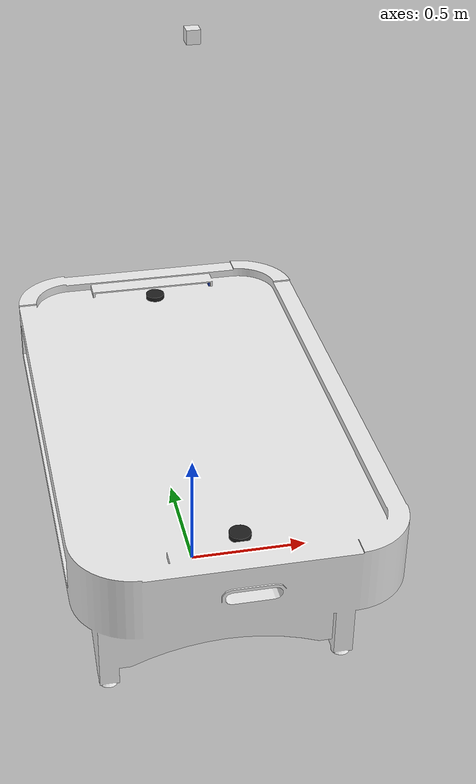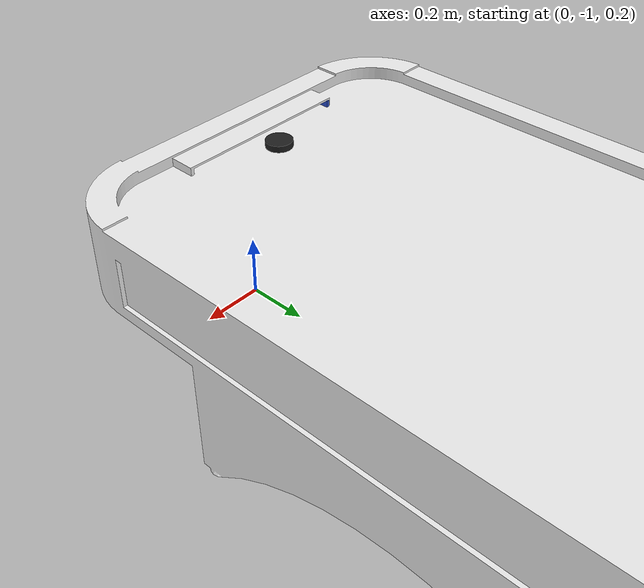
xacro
<?xml version="1.0"?>
<robot xmlns:xacro="http://www.ros.org/wiki/xacro" name="hockey_robot">

  <xacro:property name="PI" value="3.1415926535897931"/>
  <xacro:property name="mass" value="1" /> <!-- arbitrary value for mass -->
  <xacro:property name="width" value="1.1" /> <!-- Square dimensions (widthxwidth) of beams -->
  <xacro:property name="tackers_radius" value="0.86" /> <!-- Link 1 -->
  <xacro:property name="tackers_height" value="0.1" />
  <xacro:property name="camera_height" value="1.5" /> <!-- Link 3 -->
  <xacro:property name="camera_link" value="0.05" /> <!-- Size of square 'camera' box -->
  <xacro:property name="sonar_length" value="0.07" />
  <xacro:property name="sonar_width" value="0.01" />
  <xacro:property name="sonar_height" value="0.02" />
  <xacro:property name="sonar_link" value="0.1" />
  <xacro:property name="pusher_height" value="0.02" /> <!-- Space btw top of beam and the each joint -->
  <xacro:property name="pusher_radius" value="0.04" />

  <!-- Import all Gazebo-customization elements, including Gazebo colors -->
  <xacro:include filename="$(find hockey_robot_description)/urdf/hockey_robot.gazebo" />
  <!-- Import Rviz colors -->
  <xacro:include filename="$(find hockey_robot_description)/urdf/materials.xacro" />

  <link name="world"/>

  <joint name="fixed" type="fixed">
    <parent link="world"/>
    <child link="base_link"/>
    <origin xyz="0 0 0.8" rpy="0 0 0"/>
  </joint>

  <link name="base_link">
    <visual>
      <geometry>
        <mesh filename="package://hockey_robot_description/meshes/hockeytablev4.dae"/>
      </geometry>
      <origin rpy="0 0 0" xyz="-0.46 -0.7 -0.8"/>
      <material name="white"/>
    </visual>
    <collision>
      <geometry>
        <mesh filename="package://hockey_robot_description/meshes/hockeytablev4.dae"/>
      </geometry>
      <origin rpy="0 0 0" xyz="-0.46 -0.7 -0.8"/>
    </collision>
    <inertial>
      <mass value="80"/>
      <inertia ixx="1.0" ixy="0.0" ixz="0.0" iyy="1.0" iyz="0.0" izz="1.0"/>
    </inertial>
  </link>

  <!-- Camera -->
  <link name="camera_link">
    <collision>
      <origin xyz="0 0 0" rpy="0 0 0"/>
      <geometry>
	      <box size="${camera_link} ${camera_link} ${camera_link}"/>
      </geometry>
    </collision>

    <visual>
      <origin xyz="0 0 0" rpy="0 0 0"/>
      <geometry>
	      <box size="${camera_link} ${camera_link} ${camera_link}"/>
      </geometry>
      <material name="white"/>
    </visual>

    <inertial>
      <mass value="1e-5" />
      <origin xyz="0 0 0" rpy="0 0 0"/>
      <inertia ixx="1e-6" ixy="0" ixz="0" iyy="1e-6" iyz="0" izz="1e-6" />
    </inertial>
  </link>

  <joint name="camera_joint" type="fixed">
    <axis xyz="0 0 0" />
    <!--rigin xyz="0 1 ${height3 - axel_offset*2}" rpy="0 0 0"/-->
    <origin xyz="0 0 ${camera_height}" rpy="0 ${pi/2} 0"/>
    <parent link="base_link"/>
    <child link="camera_link"/>
  </joint>

  <!-- Sonar -->
  <link name="sonar_1">
    <collision>
      <origin xyz="0 0 0" rpy="0 0 0"/>
      <geometry>
	      <box size="${sonar_width} ${sonar_length} ${sonar_height}"/>
      </geometry>
    </collision>

    <visual>
      <origin xyz="0 0 0" rpy="0 0 0"/>
      <geometry>
	      <box size="${sonar_width} ${sonar_length} ${sonar_height}"/>
      </geometry>
      <material name="blue"/>
    </visual>

    <inertial>
      <mass value="1e-5" />
      <origin xyz="0 0 0" rpy="0 0 0"/>
      <inertia ixx="1e-6" ixy="0" ixz="0" iyy="1e-6" iyz="0" izz="1e-6" />
    </inertial>
  </link>
  <joint name="sonar_1_joint" type="fixed">
    <axis xyz="0 0 0" />
    <!--rigin xyz="0 1 ${height3 - axel_offset*2}" rpy="0 0 0"/-->
    <origin xyz="-0.26 -0.95 ${sonar_height/2}" rpy="0 0 0"/>
    <parent link="base_link"/>
    <child link="sonar_1"/>
  </joint>

  <link name="sonar_2">
    <collision>
      <origin xyz="0 0 0" rpy="0 0 0"/>
      <geometry>
	      <box size="${sonar_width} ${sonar_length} ${sonar_height}"/>
      </geometry>
    </collision>

    <visual>
      <origin xyz="0 0 0" rpy="0 0 0"/>
      <geometry>
	      <box size="${sonar_width} ${sonar_length} ${sonar_height}"/>
      </geometry>
      <material name="blue"/>
    </visual>

    <inertial>
      <mass value="1e-5" />
      <origin xyz="0 0 0" rpy="0 0 0"/>
      <inertia ixx="1e-6" ixy="0" ixz="0" iyy="1e-6" iyz="0" izz="1e-6" />
    </inertial>
  </link>
  <joint name="sonar_2_joint" type="fixed">
    <axis xyz="0 0 0" />
    <!--rigin xyz="0 1 ${height3 - axel_offset*2}" rpy="0 0 0"/-->
    <origin xyz="0.26 0.95 ${sonar_height/2}" rpy="0 0 ${pi}"/>
    <parent link="base_link"/>
    <child link="sonar_2"/>
  </joint>

  <!-- generate an optical frame http://www.ros.org/reps/rep-0103.html#suffix-frames
      so that ros and opencv can operate on the camera frame correctly -->
  <joint name="camera_optical_joint" type="fixed">
    <!-- these values have to be these values otherwise the gazebo camera image
        won't be aligned properly with the frame it is supposedly originating from -->
    <origin xyz="0 0 0" rpy="${-pi/2} 0 ${-pi/2}"/>
    <parent link="camera_link"/>
    <child link="camera_link_optical"/>
  </joint>

  <link name="camera_link_optical">
  </link>

  <link name="horizon_track_1">
    <visual>
      <geometry>
        <box size="${width} 0 0"/>
      </geometry>
      <origin rpy="0 0 0" xyz="0 0 0"/>
      <material name="blue"/>
    </visual>
    <collision>
      <geometry>
        <box size="${width} 0.05 0.01"/>
      </geometry>
      <origin rpy="0 0 0" xyz="0 0 0"/>
    </collision>
    <inertial>
      <mass value="10"/>
      <inertia ixx="1.0" ixy="0.0" ixz="0.0" iyy="1.0" iyz="0.0" izz="1.0"/>
    </inertial>
  </link>
  <joint name="base_to_horizon_track_1" type="prismatic">
    <axis xyz="0 1 0"/>
    <parent link="base_link"/>
    <child link="horizon_track_1"/>
    <limit effort="1000.0" lower="0" upper="${tackers_radius}" velocity="0.5"/>
    <origin xyz="0 ${-tackers_radius} ${tackers_height}"/>
  </joint>

  <link name="pusher_1">
    <visual>
      <geometry>
        <cylinder length="${pusher_height}" radius="${pusher_radius}"/>
      </geometry>
      <material name="black"/>
    </visual>
    <collision>
      <geometry>
        <cylinder length="${pusher_height}" radius="${pusher_radius}"/>
      </geometry>
      <surface>
        <bounce restitution_coefficient="1.0" threshold="0.01"/>
      </surface>
    </collision>
    <inertial>
      <mass value="10"/>
      <inertia ixx="1.0" ixy="0.0" ixz="0.0" iyy="1.0" iyz="0.0" izz="1.0"/>
    </inertial>
  </link>
  <joint name="horizon_track_1_to_pusher_1" type="prismatic">
    <axis xyz="1 0 0"/>
    <parent link="horizon_track_1"/>
    <child link="pusher_1"/>
    <limit effort="1000.0" lower="-0.5" upper="0.5" velocity="0.5"/>
    <origin xyz="0 0 -${tackers_height-pusher_height/2}"/>
  </joint>

  <link name="horizon_track_2">
    <visual>
      <geometry>
        <box size="${width} 0 0"/>
      </geometry>
      <origin rpy="0 0 0" xyz="0 0 0"/>
      <material name="blue"/>
    </visual>
    <collision>
      <geometry>
        <box size="${width} 0.05 0.01"/>
      </geometry>
      <origin rpy="0 0 0" xyz="0 0 0"/>
    </collision>
    <inertial>
      <mass value="10"/>
      <inertia ixx="1.0" ixy="0.0" ixz="0.0" iyy="1.0" iyz="0.0" izz="1.0"/>
    </inertial>
  </link>
  <joint name="base_to_horizon_track_2" type="prismatic">
    <axis xyz="0 1 0"/>
    <parent link="base_link"/>
    <child link="horizon_track_2"/>
    <limit effort="1000.0" lower="0" upper="${tackers_radius}" velocity="1"/>
    <origin xyz="0 ${tackers_radius} ${tackers_height}" rpy="0 0 ${pi}"/>
  </joint>

  <link name="pusher_2">
    <visual>
      <geometry>
        <cylinder length="0.02" radius="${pusher_radius}"/>
      </geometry>
      <material name="black"/>
    </visual>
    <collision>
      <geometry>
        <cylinder length="0.02" radius="${pusher_radius}"/>
      </geometry>
    </collision>
    <inertial>
      <mass value="10"/>
      <inertia ixx="1.0" ixy="0.0" ixz="0.0" iyy="1.0" iyz="0.0" izz="1.0"/>
    </inertial>
  </link>
  <joint name="horizon_track_2_to_pusher_2" type="prismatic">
    <axis xyz="1 0 0"/>
    <parent link="horizon_track_2"/>
    <child link="pusher_2"/>
    <limit effort="1000.0" lower="-0.5" upper="0.5" velocity="1"/>
    <origin xyz="0 0 -${tackers_height-pusher_height/2}"/>
  </joint>

  <transmission name="tran1">
    <type>transmission_interface/SimpleTransmission</type>
    <joint name="base_to_horizon_track_1">
      <hardwareInterface>EffortJointInterface</hardwareInterface>
    </joint>
    <actuator name="motor1">
      <hardwareInterface>EffortJointInterface</hardwareInterface>
      <mechanicalReduction>1</mechanicalReduction>
    </actuator>
  </transmission>

  <transmission name="tran2">
    <type>transmission_interface/SimpleTransmission</type>
    <joint name="horizon_track_1_to_pusher_1">
      <hardwareInterface>EffortJointInterface</hardwareInterface>
    </joint>
    <actuator name="motor2">
      <hardwareInterface>EffortJointInterface</hardwareInterface>
      <mechanicalReduction>1</mechanicalReduction>
    </actuator>
  </transmission>

  <transmission name="tran3">
    <type>transmission_interface/SimpleTransmission</type>
    <joint name="base_to_horizon_track_2">
      <hardwareInterface>EffortJointInterface</hardwareInterface>
    </joint>
    <actuator name="motor3">
      <hardwareInterface>EffortJointInterface</hardwareInterface>
      <mechanicalReduction>1</mechanicalReduction>
    </actuator>
  </transmission>

  <transmission name="tran4">
    <type>transmission_interface/SimpleTransmission</type>
    <joint name="horizon_track_2_to_pusher_2">
      <hardwareInterface>EffortJointInterface</hardwareInterface>
    </joint>
    <actuator name="motor4">
      <hardwareInterface>EffortJointInterface</hardwareInterface>
      <mechanicalReduction>1</mechanicalReduction>
    </actuator>
  </transmission>

</robot>
